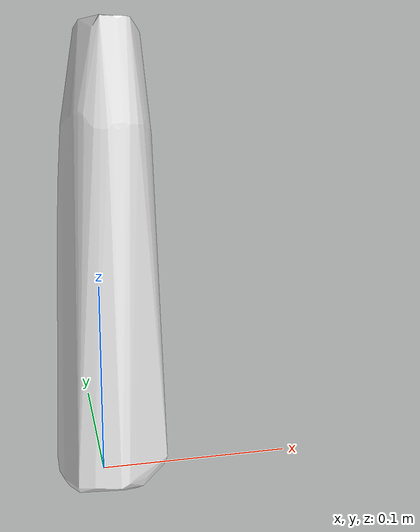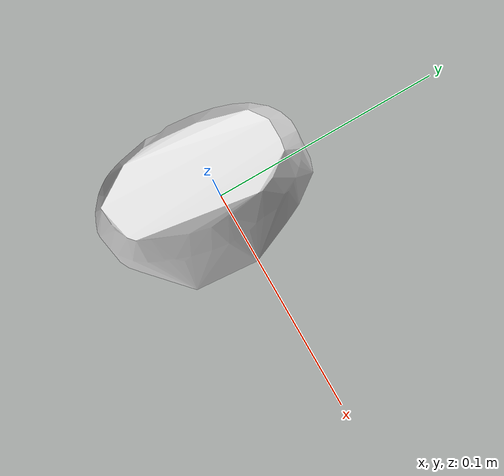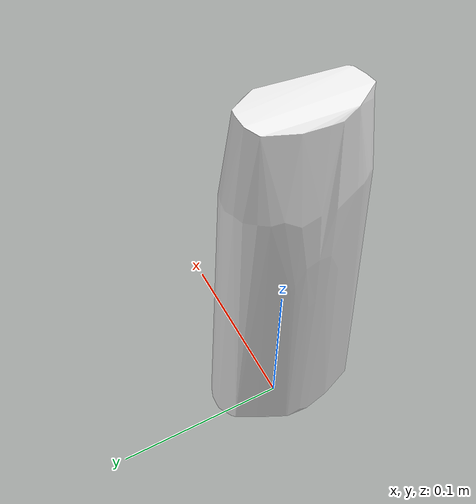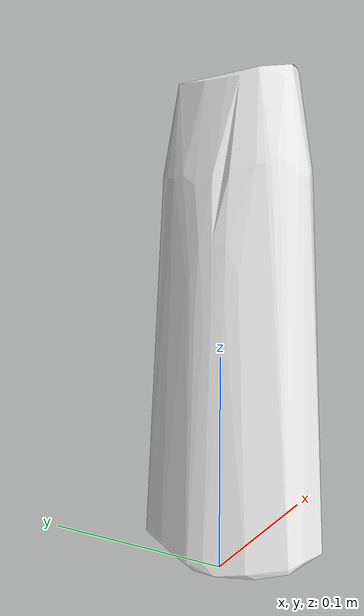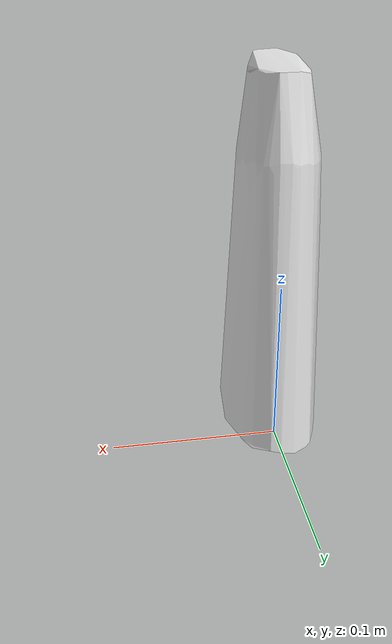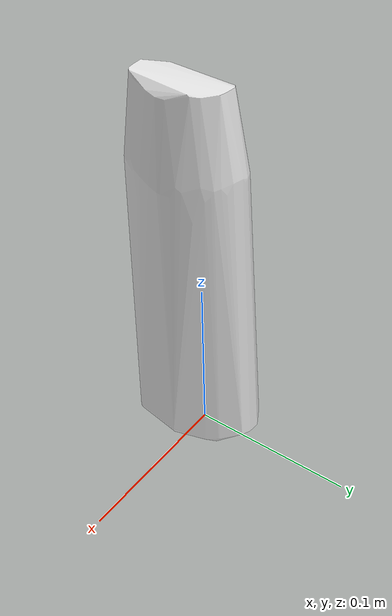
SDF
<?xml version='1.0'?>
<sdf version="1.4">
  <model name="white_rain_sensations_ocean_mist_hydrating_conditioner">
    <static>false</static>
    <link name="link">
      <inertial>
        <pose>0.003768806733128963 -0.0049041806415245056 0.10439461267852092 3.13961111530257 0.01209803447414782 -0.0036754607780346915</pose>
        <mass>0.06175602806274389</mass>
        <inertia>
          <ixx>0.00024859117009384997</ixx>
          <ixy>1.0081378159031405e-21</ixy>
          <ixz>2.0272481564754843e-21</ixz>
          <iyy>0.00023366899637320524</iyy>
          <iyz>5.783116946006955e-21</iyz>
          <izz>3.263574045949132e-05</izz>
        </inertia>
      </inertial>
      <collision name="collision">
        <geometry>
          <mesh>
            <!-- Use a downsampled mesh for collisions -->
            <uri>model:///white_rain_sensations_ocean_mist_hydrating_conditioner/white_rain_sensations_ocean_mist_hydrating_conditioner_250_collision.obj</uri>
	        </mesh>
        </geometry>
        <surface>
      </surface>
      </collision>
      <visual name="visual">
        <geometry>
          <mesh>
            <uri>model:///white_rain_sensations_ocean_mist_hydrating_conditioner/optimized_tsdf_texture_mapped_mesh.obj</uri>
	        </mesh>
        </geometry>
        <material>
          <script>
            <uri>model:///white_rain_sensations_ocean_mist_hydrating_conditioner/white_rain_sensations_ocean_mist_hydrating_conditioner.material</uri>
            <name>white_rain_sensations_ocean_mist_hydrating_conditioner</name>
          </script>
        </material>
      </visual>
    </link>
  </model>
</sdf>
